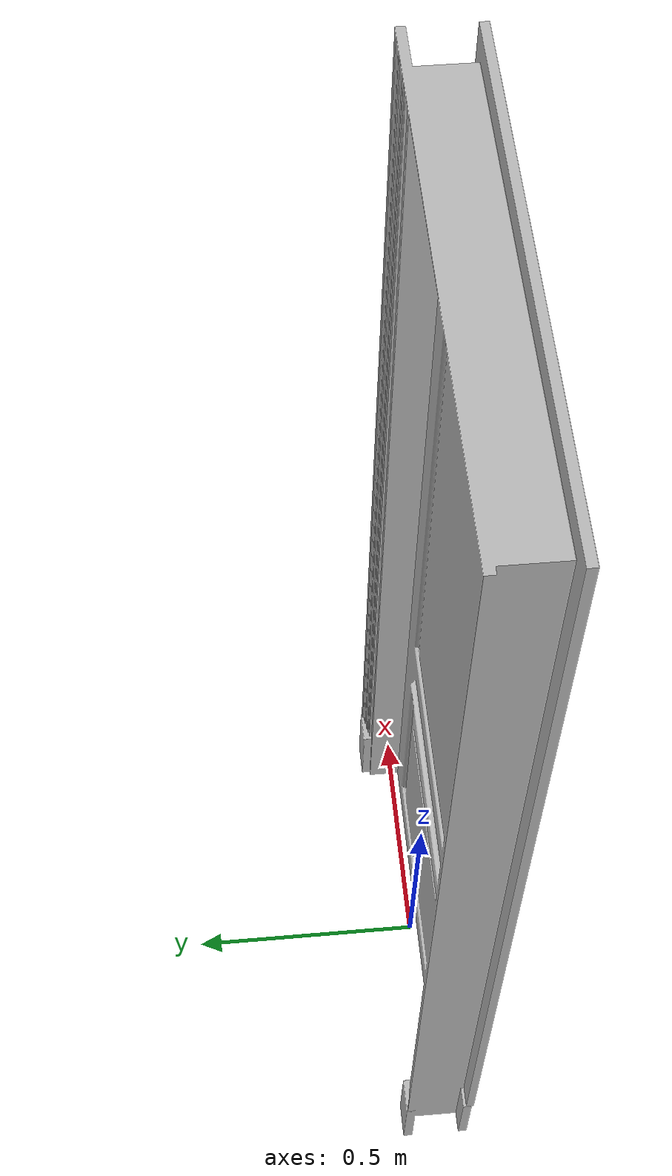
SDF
<sdf version="1.6">
  <model name="door">
    <static>false</static>
    <link name="door_link">
      <pose>0 0 0 0 0 0</pose>
      <inertial><mass>1.0</mass></inertial>

      <visual name="visual">
        <geometry>
          <mesh>
            <uri>model://door_open/meshes/door_visual.DAE</uri>
          </mesh>
        </geometry>
      </visual>

      <collision name="collision">
        <geometry>
          <mesh>
            <uri>model://door_open/meshes/door_collision.DAE</uri>
            <scale>1 1 1</scale>
          </mesh>
        </geometry>
      </collision>
    </link>

    <link name="hinge_link"/>

    <joint name="door_hinge_joint" type="revolute">
      <parent>hinge_link</parent>
      <child>door_link</child>
      <pose>0 0 0 0 0 0</pose>
      <axis>
        <xyz>0 0 1</xyz>
        <limit>
          <lower>0</lower>
          <upper>1.57</upper>
        </limit>
      </axis>
    </joint>

    <!-- プラグインで自動開閉 -->
    <plugin name="joint_controller" filename="gz-sim-joint-controller-system">
      <ros>
        <namespace>/door</namespace>
      </ros>
      <joint>door_hinge</joint>
      <pid>1.0 3.8 0.1</pid>
      <command_topic>~/command</command_topic>
    </plugin>
  </model>

</sdf>
